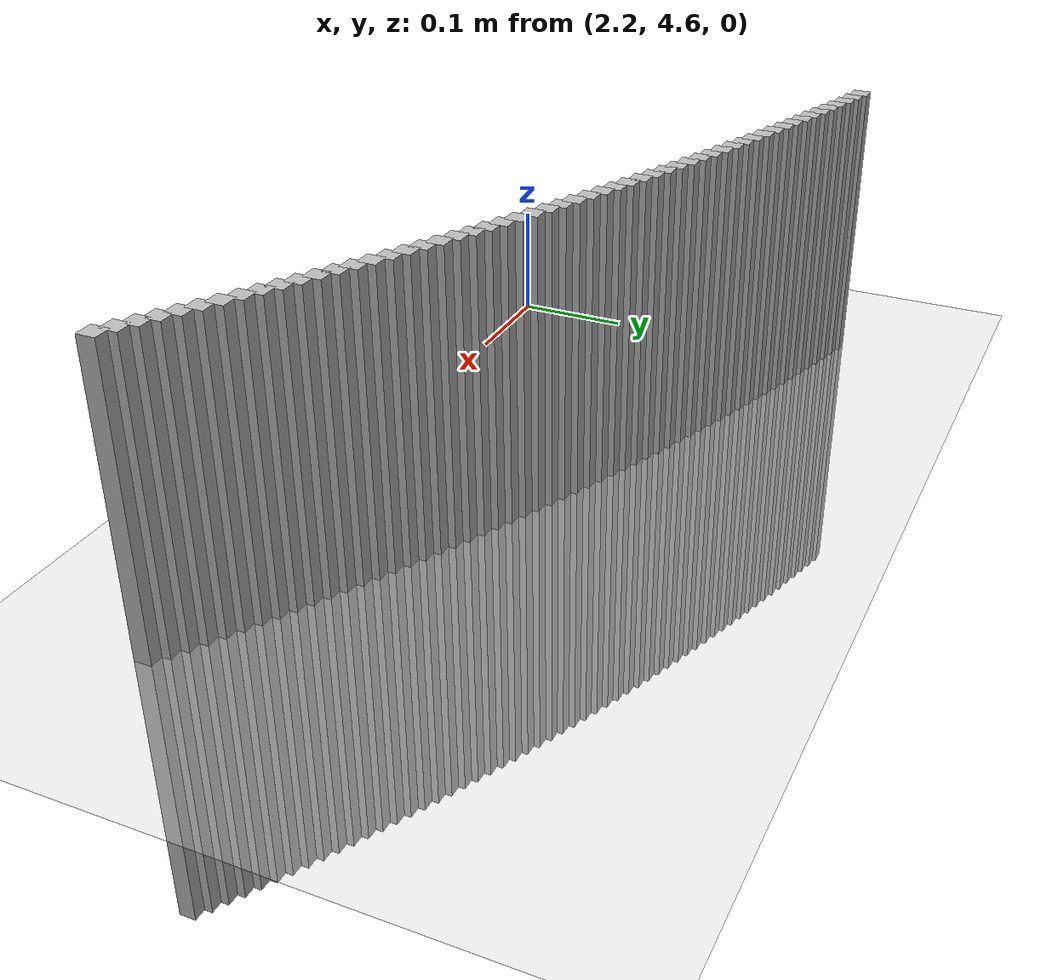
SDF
<sdf version="1.6">
 <world name="base">
  <include><uri>model://sun</uri></include>
  <include><uri>model://ground_plane</uri></include>
  <model name="k404">
   <link name="56_link">
    <collision name="collision_56">
     <pose>2.1587934778588376 4.91163661307641 0 0 -0 0</pose>
     <geometry><box><size>0.015 0.015 0.50</size></box></geometry>
    </collision>
    <visual name="visual_56">
     <pose>2.1587934778588376 4.91163661307641 0 0 -0 0</pose>
     <geometry><box><size>0.015 0.015 0.50</size></box></geometry>
    </visual>
   </link>
   <link name="57_link">
    <collision name="collision_57">
     <pose>2.172181223583178 4.907939451618795 0 0 -0 0</pose>
     <geometry><box><size>0.015 0.015 0.50</size></box></geometry>
    </collision>
    <visual name="visual_57">
     <pose>2.172181223583178 4.907939451618795 0 0 -0 0</pose>
     <geometry><box><size>0.015 0.015 0.50</size></box></geometry>
    </visual>
   </link>
   <link name="58_link">
    <collision name="collision_58">
     <pose>2.1855482230268164 4.904167971233452 0 0 -0 0</pose>
     <geometry><box><size>0.015 0.015 0.50</size></box></geometry>
    </collision>
    <visual name="visual_58">
     <pose>2.1855482230268164 4.904167971233452 0 0 -0 0</pose>
     <geometry><box><size>0.015 0.015 0.50</size></box></geometry>
    </visual>
   </link>
   <link name="59_link">
    <collision name="collision_59">
     <pose>2.198894063629104 4.900322288323799 0 0 -0 0</pose>
     <geometry><box><size>0.015 0.015 0.50</size></box></geometry>
    </collision>
    <visual name="visual_59">
     <pose>2.198894063629104 4.900322288323799 0 0 -0 0</pose>
     <geometry><box><size>0.015 0.015 0.50</size></box></geometry>
    </visual>
   </link>
   <link name="60_link">
    <collision name="collision_60">
     <pose>2.2122183334824386 4.896402521583446 0 0 -0 0</pose>
     <geometry><box><size>0.015 0.015 0.50</size></box></geometry>
    </collision>
    <visual name="visual_60">
     <pose>2.2122183334824386 4.896402521583446 0 0 -0 0</pose>
     <geometry><box><size>0.015 0.015 0.50</size></box></geometry>
    </visual>
   </link>
   <link name="61_link">
    <collision name="collision_61">
     <pose>2.2255206213449816 4.892408791992537 0 0 -0 0</pose>
     <geometry><box><size>0.015 0.015 0.50</size></box></geometry>
    </collision>
    <visual name="visual_61">
     <pose>2.2255206213449816 4.892408791992537 0 0 -0 0</pose>
     <geometry><box><size>0.015 0.015 0.50</size></box></geometry>
    </visual>
   </link>
   <link name="62_link">
    <collision name="collision_62">
     <pose>2.238800516653349 4.888341222814015 0 0 -0 0</pose>
     <geometry><box><size>0.015 0.015 0.50</size></box></geometry>
    </collision>
    <visual name="visual_62">
     <pose>2.238800516653349 4.888341222814015 0 0 -0 0</pose>
     <geometry><box><size>0.015 0.015 0.50</size></box></geometry>
    </visual>
   </link>
   <link name="63_link">
    <collision name="collision_63">
     <pose>2.2520576095352824 4.884199939589815 0 0 -0 0</pose>
     <geometry><box><size>0.015 0.015 0.50</size></box></geometry>
    </collision>
    <visual name="visual_63">
     <pose>2.2520576095352824 4.884199939589815 0 0 -0 0</pose>
     <geometry><box><size>0.015 0.015 0.50</size></box></geometry>
    </visual>
   </link>
   <link name="64_link">
    <collision name="collision_64">
     <pose>2.265291490822302 4.879985070136991 0 0 -0 0</pose>
     <geometry><box><size>0.015 0.015 0.50</size></box></geometry>
    </collision>
    <visual name="visual_64">
     <pose>2.265291490822302 4.879985070136991 0 0 -0 0</pose>
     <geometry><box><size>0.015 0.015 0.50</size></box></geometry>
    </visual>
   </link>
   <link name="65_link">
    <collision name="collision_65">
     <pose>2.278501752062331 4.875696744543773 0 0 -0 0</pose>
     <geometry><box><size>0.015 0.015 0.50</size></box></geometry>
    </collision>
    <visual name="visual_65">
     <pose>2.278501752062331 4.875696744543773 0 0 -0 0</pose>
     <geometry><box><size>0.015 0.015 0.50</size></box></geometry>
    </visual>
   </link>
   <link name="66_link">
    <collision name="collision_66">
     <pose>2.291687985532306 4.8713350951655485 0 0 -0 0</pose>
     <geometry><box><size>0.015 0.015 0.50</size></box></geometry>
    </collision>
    <visual name="visual_66">
     <pose>2.291687985532306 4.8713350951655485 0 0 -0 0</pose>
     <geometry><box><size>0.015 0.015 0.50</size></box></geometry>
    </visual>
   </link>
   <link name="67_link">
    <collision name="collision_67">
     <pose>2.3048497842507594 4.866900256620778 0 0 -0 0</pose>
     <geometry><box><size>0.015 0.015 0.50</size></box></geometry>
    </collision>
    <visual name="visual_67">
     <pose>2.3048497842507594 4.866900256620778 0 0 -0 0</pose>
     <geometry><box><size>0.015 0.015 0.50</size></box></geometry>
    </visual>
   </link>
   <link name="68_link">
    <collision name="collision_68">
     <pose>2.3179867419903806 4.862392365786844 0 0 -0 0</pose>
     <geometry><box><size>0.015 0.015 0.50</size></box></geometry>
    </collision>
    <visual name="visual_68">
     <pose>2.3179867419903806 4.862392365786844 0 0 -0 0</pose>
     <geometry><box><size>0.015 0.015 0.50</size></box></geometry>
    </visual>
   </link>
   <link name="69_link">
    <collision name="collision_69">
     <pose>2.331098453290554 4.857811561795821 0 0 -0 0</pose>
     <geometry><box><size>0.015 0.015 0.50</size></box></geometry>
    </collision>
    <visual name="visual_69">
     <pose>2.331098453290554 4.857811561795821 0 0 -0 0</pose>
     <geometry><box><size>0.015 0.015 0.50</size></box></geometry>
    </visual>
   </link>
   <link name="70_link">
    <collision name="collision_70">
     <pose>2.344184513469872 4.853157986030185 0 0 -0 0</pose>
     <geometry><box><size>0.015 0.015 0.50</size></box></geometry>
    </collision>
    <visual name="visual_70">
     <pose>2.344184513469872 4.853157986030185 0 0 -0 0</pose>
     <geometry><box><size>0.015 0.015 0.50</size></box></geometry>
    </visual>
   </link>
   <link name="71_link">
    <collision name="collision_71">
     <pose>2.3572445186386286 4.848431782118447 0 0 -0 0</pose>
     <geometry><box><size>0.015 0.015 0.50</size></box></geometry>
    </collision>
    <visual name="visual_71">
     <pose>2.3572445186386286 4.848431782118447 0 0 -0 0</pose>
     <geometry><box><size>0.015 0.015 0.50</size></box></geometry>
    </visual>
   </link>
   <link name="72_link">
    <collision name="collision_72">
     <pose>2.37027806571128 4.843633095930725 0 0 -0 0</pose>
     <geometry><box><size>0.015 0.015 0.50</size></box></geometry>
    </collision>
    <visual name="visual_72">
     <pose>2.37027806571128 4.843633095930725 0 0 -0 0</pose>
     <geometry><box><size>0.015 0.015 0.50</size></box></geometry>
    </visual>
   </link>
   <link name="73_link">
    <collision name="collision_73">
     <pose>2.3832847524188896 4.838762075574234 0 0 -0 0</pose>
     <geometry><box><size>0.015 0.015 0.50</size></box></geometry>
    </collision>
    <visual name="visual_73">
     <pose>2.3832847524188896 4.838762075574234 0 0 -0 0</pose>
     <geometry><box><size>0.015 0.015 0.50</size></box></geometry>
    </visual>
   </link>
   <link name="74_link">
    <collision name="collision_74">
     <pose>2.3962641773215427 4.833818871388724 0 0 -0 0</pose>
     <geometry><box><size>0.015 0.015 0.50</size></box></geometry>
    </collision>
    <visual name="visual_74">
     <pose>2.3962641773215427 4.833818871388724 0 0 -0 0</pose>
     <geometry><box><size>0.015 0.015 0.50</size></box></geometry>
    </visual>
   </link>
   <link name="75_link">
    <collision name="collision_75">
     <pose>2.4092159398207356 4.828803635941831 0 0 -0 0</pose>
     <geometry><box><size>0.015 0.015 0.50</size></box></geometry>
    </collision>
    <visual name="visual_75">
     <pose>2.4092159398207356 4.828803635941831 0 0 -0 0</pose>
     <geometry><box><size>0.015 0.015 0.50</size></box></geometry>
    </visual>
   </link>
   <link name="76_link">
    <collision name="collision_76">
     <pose>2.42213964017174 4.823716524024377 0 0 -0 0</pose>
     <geometry><box><size>0.015 0.015 0.50</size></box></geometry>
    </collision>
    <visual name="visual_76">
     <pose>2.42213964017174 4.823716524024377 0 0 -0 0</pose>
     <geometry><box><size>0.015 0.015 0.50</size></box></geometry>
    </visual>
   </link>
   <link name="77_link">
    <collision name="collision_77">
     <pose>2.4350348794959418 4.818557692645583 0 0 -0 0</pose>
     <geometry><box><size>0.015 0.015 0.50</size></box></geometry>
    </collision>
    <visual name="visual_77">
     <pose>2.4350348794959418 4.818557692645583 0 0 -0 0</pose>
     <geometry><box><size>0.015 0.015 0.50</size></box></geometry>
    </visual>
   </link>
   <link name="78_link">
    <collision name="collision_78">
     <pose>2.44790125979315 4.813327301028231 0 0 -0 0</pose>
     <geometry><box><size>0.015 0.015 0.50</size></box></geometry>
    </collision>
    <visual name="visual_78">
     <pose>2.44790125979315 4.813327301028231 0 0 -0 0</pose>
     <geometry><box><size>0.015 0.015 0.50</size></box></geometry>
    </visual>
   </link>
   <link name="79_link">
    <collision name="collision_79">
     <pose>2.460738383953884 4.808025510603745 0 0 -0 0</pose>
     <geometry><box><size>0.015 0.015 0.50</size></box></geometry>
    </collision>
    <visual name="visual_79">
     <pose>2.460738383953884 4.808025510603745 0 0 -0 0</pose>
     <geometry><box><size>0.015 0.015 0.50</size></box></geometry>
    </visual>
   </link>
   <link name="80_link">
    <collision name="collision_80">
     <pose>2.4735458557716266 4.802652485007213 0 0 -0 0</pose>
     <geometry><box><size>0.015 0.015 0.50</size></box></geometry>
    </collision>
    <visual name="visual_80">
     <pose>2.4735458557716266 4.802652485007213 0 0 -0 0</pose>
     <geometry><box><size>0.015 0.015 0.50</size></box></geometry>
    </visual>
   </link>
   <link name="81_link">
    <collision name="collision_81">
     <pose>2.486323279955054 4.7972083900723295 0 0 -0 0</pose>
     <geometry><box><size>0.015 0.015 0.50</size></box></geometry>
    </collision>
    <visual name="visual_81">
     <pose>2.486323279955054 4.7972083900723295 0 0 -0 0</pose>
     <geometry><box><size>0.015 0.015 0.50</size></box></geometry>
    </visual>
   </link>
   <link name="82_link">
    <collision name="collision_82">
     <pose>2.499070262140237 4.791693393826286 0 0 -0 0</pose>
     <geometry><box><size>0.015 0.015 0.50</size></box></geometry>
    </collision>
    <visual name="visual_82">
     <pose>2.499070262140237 4.791693393826286 0 0 -0 0</pose>
     <geometry><box><size>0.015 0.015 0.50</size></box></geometry>
    </visual>
   </link>
   <link name="83_link">
    <collision name="collision_83">
     <pose>2.511786408902812 4.786107666484575 0 0 -0 0</pose>
     <geometry><box><size>0.015 0.015 0.50</size></box></geometry>
    </collision>
    <visual name="visual_83">
     <pose>2.511786408902812 4.786107666484575 0 0 -0 0</pose>
     <geometry><box><size>0.015 0.015 0.50</size></box></geometry>
    </visual>
   </link>
   <link name="84_link">
    <collision name="collision_84">
     <pose>2.524471327770122 4.780451380445749 0 0 -0 0</pose>
     <geometry><box><size>0.015 0.015 0.50</size></box></geometry>
    </collision>
    <visual name="visual_84">
     <pose>2.524471327770122 4.780451380445749 0 0 -0 0</pose>
     <geometry><box><size>0.015 0.015 0.50</size></box></geometry>
    </visual>
   </link>
   <link name="85_link">
    <collision name="collision_85">
     <pose>2.5371246272333323 4.774724710286087 0 0 -0 0</pose>
     <geometry><box><size>0.015 0.015 0.50</size></box></geometry>
    </collision>
    <visual name="visual_85">
     <pose>2.5371246272333323 4.774724710286087 0 0 -0 0</pose>
     <geometry><box><size>0.015 0.015 0.50</size></box></geometry>
    </visual>
   </link>
   <link name="86_link">
    <collision name="collision_86">
     <pose>2.5497459167595142 4.768927832754212 0 0 -0 0</pose>
     <geometry><box><size>0.015 0.015 0.50</size></box></geometry>
    </collision>
    <visual name="visual_86">
     <pose>2.5497459167595142 4.768927832754212 0 0 -0 0</pose>
     <geometry><box><size>0.015 0.015 0.50</size></box></geometry>
    </visual>
   </link>
   <link name="87_link">
    <collision name="collision_87">
     <pose>2.5623348068036966 4.76306092676564 0 0 -0 0</pose>
     <geometry><box><size>0.015 0.015 0.50</size></box></geometry>
    </collision>
    <visual name="visual_87">
     <pose>2.5623348068036966 4.76306092676564 0 0 -0 0</pose>
     <geometry><box><size>0.015 0.015 0.50</size></box></geometry>
    </visual>
   </link>
   <link name="88_link">
    <collision name="collision_88">
     <pose>2.5748909088208887 4.757124173397246 0 0 -0 0</pose>
     <geometry><box><size>0.015 0.015 0.50</size></box></geometry>
    </collision>
    <visual name="visual_88">
     <pose>2.5748909088208887 4.757124173397246 0 0 -0 0</pose>
     <geometry><box><size>0.015 0.015 0.50</size></box></geometry>
    </visual>
   </link>
   <link name="89_link">
    <collision name="collision_89">
     <pose>2.587413835278076 4.751117755881692 0 0 -0 0</pose>
     <geometry><box><size>0.015 0.015 0.50</size></box></geometry>
    </collision>
    <visual name="visual_89">
     <pose>2.587413835278076 4.751117755881692 0 0 -0 0</pose>
     <geometry><box><size>0.015 0.015 0.50</size></box></geometry>
    </visual>
   </link>
   <link name="90_link">
    <collision name="collision_90">
     <pose>2.5999031996661746 4.745041859601756 0 0 -0 0</pose>
     <geometry><box><size>0.015 0.015 0.50</size></box></geometry>
    </collision>
    <visual name="visual_90">
     <pose>2.5999031996661746 4.745041859601756 0 0 -0 0</pose>
     <geometry><box><size>0.015 0.015 0.50</size></box></geometry>
    </visual>
   </link>
   <link name="91_link">
    <collision name="collision_91">
     <pose>2.612358616511968 4.738896672084619 0 0 -0 0</pose>
     <geometry><box><size>0.015 0.015 0.50</size></box></geometry>
    </collision>
    <visual name="visual_91">
     <pose>2.612358616511968 4.738896672084619 0 0 -0 0</pose>
     <geometry><box><size>0.015 0.015 0.50</size></box></geometry>
    </visual>
   </link>
   <link name="92_link">
    <collision name="collision_92">
     <pose>2.624779701389999 4.732682382996073 0 0 -0 0</pose>
     <geometry><box><size>0.015 0.015 0.50</size></box></geometry>
    </collision>
    <visual name="visual_92">
     <pose>2.624779701389999 4.732682382996073 0 0 -0 0</pose>
     <geometry><box><size>0.015 0.015 0.50</size></box></geometry>
    </visual>
   </link>
   <link name="93_link">
    <collision name="collision_93">
     <pose>2.6371660709344362 4.726399184134673 0 0 -0 0</pose>
     <geometry><box><size>0.015 0.015 0.50</size></box></geometry>
    </collision>
    <visual name="visual_93">
     <pose>2.6371660709344362 4.726399184134673 0 0 -0 0</pose>
     <geometry><box><size>0.015 0.015 0.50</size></box></geometry>
    </visual>
   </link>
   <link name="94_link">
    <collision name="collision_94">
     <pose>2.6495173428509062 4.720047269425809 0 0 -0 0</pose>
     <geometry><box><size>0.015 0.015 0.50</size></box></geometry>
    </collision>
    <visual name="visual_94">
     <pose>2.6495173428509062 4.720047269425809 0 0 -0 0</pose>
     <geometry><box><size>0.015 0.015 0.50</size></box></geometry>
    </visual>
   </link>
   <link name="95_link">
    <collision name="collision_95">
     <pose>2.661833135928294 4.713626834915729 0 0 -0 0</pose>
     <geometry><box><size>0.015 0.015 0.50</size></box></geometry>
    </collision>
    <visual name="visual_95">
     <pose>2.661833135928294 4.713626834915729 0 0 -0 0</pose>
     <geometry><box><size>0.015 0.015 0.50</size></box></geometry>
    </visual>
   </link>
   <link name="96_link">
    <collision name="collision_96">
     <pose>2.674113070050506 4.70713807876548 0 0 -0 0</pose>
     <geometry><box><size>0.015 0.015 0.50</size></box></geometry>
    </collision>
    <visual name="visual_96">
     <pose>2.674113070050506 4.70713807876548 0 0 -0 0</pose>
     <geometry><box><size>0.015 0.015 0.50</size></box></geometry>
    </visual>
   </link>
   <link name="97_link">
    <collision name="collision_97">
     <pose>2.6863567662082057 4.7005812012448 0 0 -0 0</pose>
     <geometry><box><size>0.015 0.015 0.50</size></box></geometry>
    </collision>
    <visual name="visual_97">
     <pose>2.6863567662082057 4.7005812012448 0 0 -0 0</pose>
     <geometry><box><size>0.015 0.015 0.50</size></box></geometry>
    </visual>
   </link>
   <link name="98_link">
    <collision name="collision_98">
     <pose>2.6985638465105075 4.693956404725932 0 0 -0 0</pose>
     <geometry><box><size>0.015 0.015 0.50</size></box></geometry>
    </collision>
    <visual name="visual_98">
     <pose>2.6985638465105075 4.693956404725932 0 0 -0 0</pose>
     <geometry><box><size>0.015 0.015 0.50</size></box></geometry>
    </visual>
   </link>
   <link name="99_link">
    <collision name="collision_99">
     <pose>2.710733934196643 4.687263893677377 0 0 -0 0</pose>
     <geometry><box><size>0.015 0.015 0.50</size></box></geometry>
    </collision>
    <visual name="visual_99">
     <pose>2.710733934196643 4.687263893677377 0 0 -0 0</pose>
     <geometry><box><size>0.015 0.015 0.50</size></box></geometry>
    </visual>
   </link>
   <link name="100_link">
    <collision name="collision_100">
     <pose>2.7228666536475883 4.680503874657587 0 0 -0 0</pose>
     <geometry><box><size>0.015 0.015 0.50</size></box></geometry>
    </collision>
    <visual name="visual_100">
     <pose>2.7228666536475883 4.680503874657587 0 0 -0 0</pose>
     <geometry><box><size>0.015 0.015 0.50</size></box></geometry>
    </visual>
   </link>
   <link name="101_link">
    <collision name="collision_101">
     <pose>2.734961630397656 4.673676556308588 0 0 -0 0</pose>
     <geometry><box><size>0.015 0.015 0.50</size></box></geometry>
    </collision>
    <visual name="visual_101">
     <pose>2.734961630397656 4.673676556308588 0 0 -0 0</pose>
     <geometry><box><size>0.015 0.015 0.50</size></box></geometry>
    </visual>
   </link>
   <link name="102_link">
    <collision name="collision_102">
     <pose>2.747018491146056 4.66678214934954 0 0 -0 0</pose>
     <geometry><box><size>0.015 0.015 0.50</size></box></geometry>
    </collision>
    <visual name="visual_102">
     <pose>2.747018491146056 4.66678214934954 0 0 -0 0</pose>
     <geometry><box><size>0.015 0.015 0.50</size></box></geometry>
    </visual>
   </link>
   <link name="103_link">
    <collision name="collision_103">
     <pose>2.7590368637684124 4.659820866570235 0 0 -0 0</pose>
     <geometry><box><size>0.015 0.015 0.50</size></box></geometry>
    </collision>
    <visual name="visual_103">
     <pose>2.7590368637684124 4.659820866570235 0 0 -0 0</pose>
     <geometry><box><size>0.015 0.015 0.50</size></box></geometry>
    </visual>
   </link>
   <link name="104_link">
    <collision name="collision_104">
     <pose>2.771016377328253 4.652792922824526 0 0 -0 0</pose>
     <geometry><box><size>0.015 0.015 0.50</size></box></geometry>
    </collision>
    <visual name="visual_104">
     <pose>2.771016377328253 4.652792922824526 0 0 -0 0</pose>
     <geometry><box><size>0.015 0.015 0.50</size></box></geometry>
    </visual>
   </link>
   <link name="105_link">
    <collision name="collision_105">
     <pose>2.7829566620884556 4.6456985350236994 0 0 -0 0</pose>
     <geometry><box><size>0.015 0.015 0.50</size></box></geometry>
    </collision>
    <visual name="visual_105">
     <pose>2.7829566620884556 4.6456985350236994 0 0 -0 0</pose>
     <geometry><box><size>0.015 0.015 0.50</size></box></geometry>
    </visual>
   </link>
   <link name="106_link">
    <collision name="collision_106">
     <pose>2.794857349522662 4.638537922129778 0 0 -0 0</pose>
     <geometry><box><size>0.015 0.015 0.50</size></box></geometry>
    </collision>
    <visual name="visual_106">
     <pose>2.794857349522662 4.638537922129778 0 0 -0 0</pose>
     <geometry><box><size>0.015 0.015 0.50</size></box></geometry>
    </visual>
   </link>
   <link name="107_link">
    <collision name="collision_107">
     <pose>2.806718072326648 4.631311305148764 0 0 -0 0</pose>
     <geometry><box><size>0.015 0.015 0.50</size></box></geometry>
    </collision>
    <visual name="visual_107">
     <pose>2.806718072326648 4.631311305148764 0 0 -0 0</pose>
     <geometry><box><size>0.015 0.015 0.50</size></box></geometry>
    </visual>
   </link>
   <link name="108_link">
    <collision name="collision_108">
     <pose>2.818538464429664 4.624018907123819 0 0 -0 0</pose>
     <geometry><box><size>0.015 0.015 0.50</size></box></geometry>
    </collision>
    <visual name="visual_108">
     <pose>2.818538464429664 4.624018907123819 0 0 -0 0</pose>
     <geometry><box><size>0.015 0.015 0.50</size></box></geometry>
    </visual>
   </link>
   <link name="109_link">
    <collision name="collision_109">
     <pose>2.8303181610057315 4.6166609531283775 0 0 -0 0</pose>
     <geometry><box><size>0.015 0.015 0.50</size></box></geometry>
    </collision>
    <visual name="visual_109">
     <pose>2.8303181610057315 4.6166609531283775 0 0 -0 0</pose>
     <geometry><box><size>0.015 0.015 0.50</size></box></geometry>
    </visual>
   </link>
   <link name="110_link">
    <collision name="collision_110">
     <pose>2.8420567984849034 4.609237670259199 0 0 -0 0</pose>
     <geometry><box><size>0.015 0.015 0.50</size></box></geometry>
    </collision>
    <visual name="visual_110">
     <pose>2.8420567984849034 4.609237670259199 0 0 -0 0</pose>
     <geometry><box><size>0.015 0.015 0.50</size></box></geometry>
    </visual>
   </link>
   <static>true</static>
  </model>
 </world>
</sdf>
